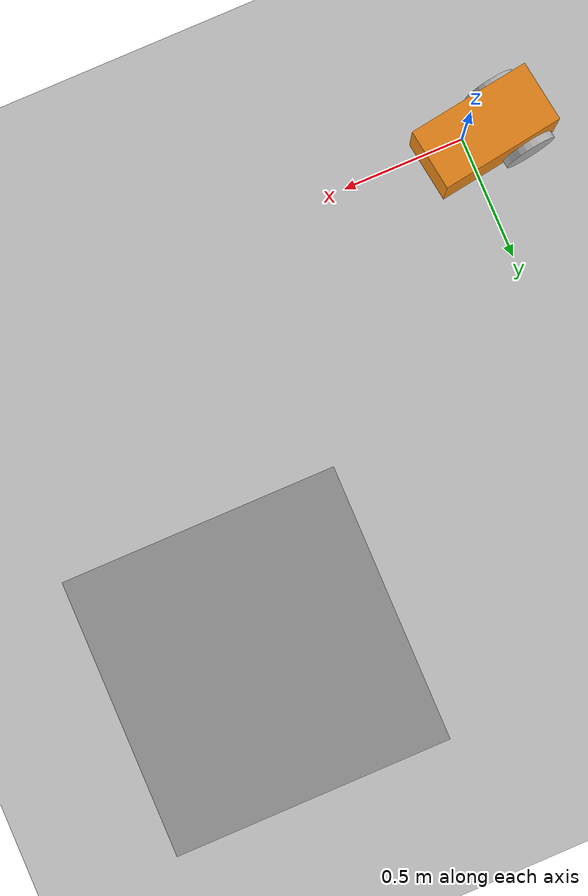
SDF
<sdf version="1.6">
 <world name="default">
  <light name="sun" type="directional">
   <pose>0 0 10 0 -0 0</pose>
   <diffuse>0.8 0.8 0.8 1</diffuse>
   <specular>0.2 0.2 0.2 1</specular>
   <attenuation>
    <range>1000</range>
    <constant>0.9</constant>
    <linear>0.01</linear>
    <quadratic>0.001</quadratic>
   </attenuation>
   <direction>-0.5 0.1 -0.9</direction>
  </light>
  <model name="ground_plane">
   <static>1</static>
   <link name="link">
    <collision name="collision">
     <geometry><plane><normal>0 0 1</normal><size>100 100</size></plane></geometry>
     <surface>
      <contact><collide_bitmask>65535</collide_bitmask></contact>
      <friction><ode><mu>100</mu><mu2>50</mu2></ode></friction>
     </surface>
    </collision>
    <visual name="visual">
     <cast_shadows>0</cast_shadows>
     <geometry><plane><normal>0 0 1</normal><size>100 100</size></plane></geometry>
     <material>
      <script><uri>file://media/materials/scripts/gazebo.material</uri><name>Gazebo/Grey</name></script>
     </material>
    </visual>
   </link>
  </model>
  <gravity>0 0 -9.8</gravity>
  <magnetic_field>6e-06 2.3e-05 -4.2e-05</magnetic_field>
  <atmosphere type="adiabatic"/>
  <physics name="default_physics" default="0" type="ode">
   <max_step_size>0.001</max_step_size>
   <real_time_factor>1</real_time_factor>
   <real_time_update_rate>1000</real_time_update_rate>
  </physics>
  <scene><ambient>0.4 0.4 0.4 1</ambient><background>0.7 0.7 0.7 1</background><shadows>1</shadows></scene>
  <audio><device>default</device></audio>
  <spherical_coordinates>
   <surface_model>EARTH_WGS84</surface_model>
   <latitude_deg>0</latitude_deg>
   <longitude_deg>0</longitude_deg>
   <elevation>0</elevation>
   <heading_deg>0</heading_deg>
  </spherical_coordinates>
  <model name="navigation_robot">
   <link name="base_link">
    <inertial>
     <mass>5</mass>
     <inertia>
      <ixx>0.0520833</ixx>
      <ixy>0</ixy>
      <ixz>0</ixz>
      <iyy>0.130208</iyy>
      <iyz>0</iyz>
      <izz>0.130208</izz>
     </inertia>
    </inertial>
    <collision name="base_link_fixed_joint_lump__collision_collision">
     <geometry><box><size>0.5 0.25 0.25</size></box></geometry>
    </collision>
    <collision name="base_link_fixed_joint_lump__caster_collision_collision_1">
     <pose>0.19625 0 -0.125 0 -0 0</pose>
     <geometry><sphere><radius>0.05375</radius></sphere></geometry>
    </collision>
    <visual name="base_link_visual_visual">
     <geometry><box><size>0.5 0.25 0.25</size></box></geometry>
     <material>
      <script><name>Gazebo/Orange</name><uri>file://media/materials/scripts/gazebo.material</uri></script>
     </material>
    </visual>
    <visual name="base_link_fixed_joint_lump__caster_visual_visual_1">
     <pose>0.19625 0 -0.125 0 -0 0</pose>
     <geometry><sphere><radius>0.05375</radius></sphere></geometry>
    </visual>
   </link>
   <link name="left_wheel">
    <pose>-0.125 0.14 -0.07125 0 -0 0</pose>
    <inertial>
     <pose>0 0 0 -0 1.5707 1.5707</pose>
     <mass>3</mass>
     <inertia>
      <ixx>0.08085</ixx>
      <ixy>0</ixy>
      <ixz>0</ixz>
      <iyy>0.08085</iyy>
      <iyz>0</iyz>
      <izz>0.0173344</izz>
     </inertia>
    </inertial>
    <collision name="left_wheel_collision">
     <pose>0 0 0 3.14159 1.57079 -1.57089</pose>
     <geometry><cylinder><length>0.03</length><radius>0.1075</radius></cylinder></geometry>
    </collision>
    <visual name="left_wheel_visual_visual">
     <pose>0 0 0 3.14159 1.57079 -1.57089</pose>
     <geometry><cylinder><length>0.03</length><radius>0.1075</radius></cylinder></geometry>
    </visual>
   </link>
   <joint name="left_wheel_hinge" type="revolute">
    <child>left_wheel</child>
    <parent>base_link</parent>
    <axis>
     <xyz>0 1 0</xyz>
     <limit><lower>-1e+16</lower><upper>1e+16</upper></limit>
     <dynamics><spring_reference>0</spring_reference><spring_stiffness>0</spring_stiffness></dynamics>
     <use_parent_model_frame>1</use_parent_model_frame>
    </axis>
   </joint>
   <link name="right_wheel">
    <pose>-0.125 -0.14 -0.07125 0 -0 0</pose>
    <inertial>
     <pose>0 0 0 -0 1.5707 1.5707</pose>
     <mass>3</mass>
     <inertia>
      <ixx>0.08085</ixx>
      <ixy>0</ixy>
      <ixz>0</ixz>
      <iyy>0.08085</iyy>
      <iyz>0</iyz>
      <izz>0.0173344</izz>
     </inertia>
    </inertial>
    <collision name="right_wheel_collision">
     <pose>0 0 0 3.14159 1.57079 -1.57089</pose>
     <geometry><cylinder><length>0.03</length><radius>0.1075</radius></cylinder></geometry>
    </collision>
    <visual name="right_wheel_fixed_joint_lump__left_wheel_visual_visual">
     <pose>0 0 0 3.14159 1.57079 -1.57089</pose>
     <geometry><cylinder><length>0.03</length><radius>0.1075</radius></cylinder></geometry>
    </visual>
   </link>
   <joint name="right_wheel_hinge" type="revolute">
    <child>right_wheel</child>
    <parent>base_link</parent>
    <axis>
     <xyz>0 1 0</xyz>
     <limit><lower>-1e+16</lower><upper>1e+16</upper></limit>
     <dynamics><spring_reference>0</spring_reference><spring_stiffness>0</spring_stiffness></dynamics>
     <use_parent_model_frame>1</use_parent_model_frame>
    </axis>
   </joint>
   <static>0</static>
   <plugin name="differential_drive_controller" filename="libgazebo_ros_diff_drive.so">
    <alwaysOn>1</alwaysOn>
    <updateRate>20</updateRate>
    <leftJoint>left_wheel_hinge</leftJoint>
    <rightJoint>right_wheel_hinge</rightJoint>
    <wheelSeparation>0.3576</wheelSeparation>
    <wheelDiameter>0.215</wheelDiameter>
    <torque>20</torque>
    <commandTopic>cmd_vel</commandTopic>
    <odometryTopic>odom</odometryTopic>
    <odometryFrame>odom_link</odometryFrame>
    <robotBaseFrame>base_link</robotBaseFrame>
    <legacyMode>0</legacyMode>
    <robotNamespace>/</robotNamespace>
   </plugin>
   <pose>-0.06183 0.034527 0.17875 -4e-06 1e-06 0.150401</pose>
  </model>
  <model name="unit_box">
   <pose>1.48369 1.51485 0.5 0 -0 0</pose>
   <link name="link">
    <inertial>
     <mass>1</mass>
     <inertia>
      <ixx>0.166667</ixx>
      <ixy>0</ixy>
      <ixz>0</ixz>
      <iyy>0.166667</iyy>
      <iyz>0</iyz>
      <izz>0.166667</izz>
     </inertia>
    </inertial>
    <collision name="collision"><geometry><box><size>1 1 1</size></box></geometry></collision>
    <visual name="visual">
     <geometry><box><size>1 1 1</size></box></geometry>
     <material>
      <script><name>Gazebo/Grey</name><uri>file://media/materials/scripts/gazebo.material</uri></script>
     </material>
    </visual>
   </link>
  </model>
 </world>
</sdf>
